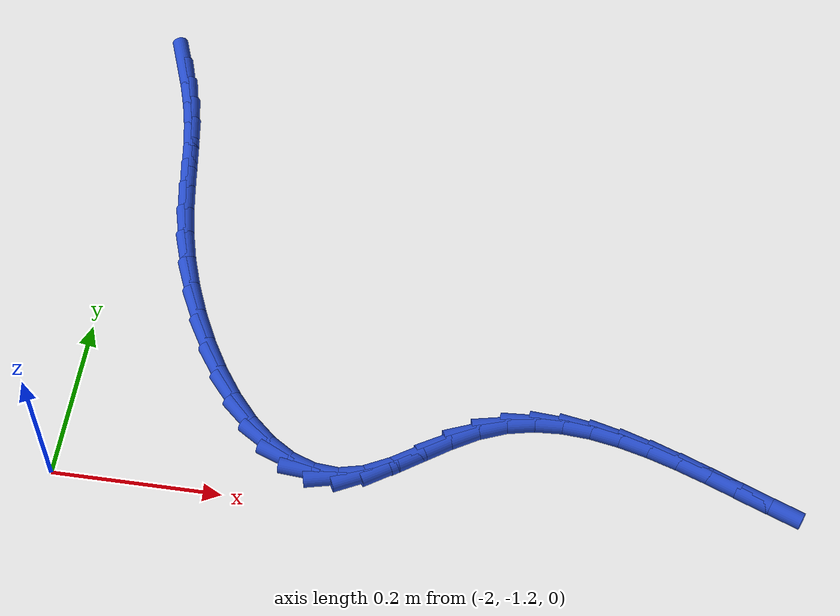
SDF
<sdf version="1.6">
 <world name="default">
  <model name="ground_plane">
   <static>1</static>
   <link name="link">
    <collision name="collision">
     <geometry><plane><normal>0 0 1</normal><size>100 100</size></plane></geometry>
     <surface><friction><ode><mu>100</mu><mu2>50</mu2></ode></friction></surface>
    </collision>
    <visual name="visual">
     <cast_shadows>0</cast_shadows>
     <geometry><plane><normal>0 0 1</normal><size>100 100</size></plane></geometry>
     <material>
      <script><uri>file://media/materials/scripts/gazebo.material</uri><name>Gazebo/WhiteGlow</name></script>
     </material>
    </visual>
   </link>
  </model>
  <model name="line">
   <link name="link_123">
    <pose>-1.9762037504684082 -0.5898322318762785 0.01 0 1.57 -1.2138098411711409</pose>
    <collision name="collision">
     <geometry><cylinder><radius>0.01</radius><length>0.08</length></cylinder></geometry>
    </collision>
    <visual name="visual">
     <material>
      <script><name>Gazebo/Blue</name><uri>file://media/materials/scripts/gazebo.material</uri></script>
     </material>
     <geometry><cylinder><radius>0.01</radius><length>0.08</length></cylinder></geometry>
    </visual>
   </link>
   <link name="link_124">
    <pose>-1.9641521813599274 -0.6221449903830808 0.01 0 1.57 -1.2602646235274075</pose>
    <collision name="collision">
     <geometry><cylinder><radius>0.01</radius><length>0.08</length></cylinder></geometry>
    </collision>
    <visual name="visual">
     <material>
      <script><name>Gazebo/Blue</name><uri>file://media/materials/scripts/gazebo.material</uri></script>
     </material>
     <geometry><cylinder><radius>0.01</radius><length>0.08</length></cylinder></geometry>
    </visual>
   </link>
   <link name="link_125">
    <pose>-1.9537778122791813 -0.6544725716247167 0.01 0 1.57 -1.3210445472237378</pose>
    <collision name="collision">
     <geometry><cylinder><radius>0.01</radius><length>0.08</length></cylinder></geometry>
    </collision>
    <visual name="visual">
     <material>
      <script><name>Gazebo/Blue</name><uri>file://media/materials/scripts/gazebo.material</uri></script>
     </material>
     <geometry><cylinder><radius>0.01</radius><length>0.08</length></cylinder></geometry>
    </visual>
   </link>
   <link name="link_126">
    <pose>-1.9455230476945835 -0.6868343577254359 0.01 0 1.57 -1.3815128865576867</pose>
    <collision name="collision">
     <geometry><cylinder><radius>0.01</radius><length>0.08</length></cylinder></geometry>
    </collision>
    <visual name="visual">
     <material>
      <script><name>Gazebo/Blue</name><uri>file://media/materials/scripts/gazebo.material</uri></script>
     </material>
     <geometry><cylinder><radius>0.01</radius><length>0.08</length></cylinder></geometry>
    </visual>
   </link>
   <link name="link_127">
    <pose>-1.9392945884897312 -0.7193458972791967 0.01 0 1.57 -1.416834655600597</pose>
    <collision name="collision">
     <geometry><cylinder><radius>0.01</radius><length>0.08</length></cylinder></geometry>
    </collision>
    <visual name="visual">
     <material>
      <script><name>Gazebo/Blue</name><uri>file://media/materials/scripts/gazebo.material</uri></script>
     </material>
     <geometry><cylinder><radius>0.01</radius><length>0.08</length></cylinder></geometry>
    </visual>
   </link>
   <link name="link_128">
    <pose>-1.9341852830591333 -0.7522688370636494 0.01 0 1.57 -1.424113236721258</pose>
    <collision name="collision">
     <geometry><cylinder><radius>0.01</radius><length>0.08</length></cylinder></geometry>
    </collision>
    <visual name="visual">
     <material>
      <script><name>Gazebo/Blue</name><uri>file://media/materials/scripts/gazebo.material</uri></script>
     </material>
     <geometry><cylinder><radius>0.01</radius><length>0.08</length></cylinder></geometry>
    </visual>
   </link>
   <link name="link_129">
    <pose>-1.929219863215923 -0.7858770517588592 0.01 0 1.57 -1.4046464800113678</pose>
    <collision name="collision">
     <geometry><cylinder><radius>0.01</radius><length>0.08</length></cylinder></geometry>
    </collision>
    <visual name="visual">
     <material>
      <script><name>Gazebo/Blue</name><uri>file://media/materials/scripts/gazebo.material</uri></script>
     </material>
     <geometry><cylinder><radius>0.01</radius><length>0.08</length></cylinder></geometry>
    </visual>
   </link>
   <link name="link_130">
    <pose>-1.9234230607732372 -0.8204444160448929 0.01 0 1.57 -1.3615212964081387</pose>
    <collision name="collision">
     <geometry><cylinder><radius>0.01</radius><length>0.08</length></cylinder></geometry>
    </collision>
    <visual name="visual">
     <material>
      <script><name>Gazebo/Blue</name><uri>file://media/materials/scripts/gazebo.material</uri></script>
     </material>
     <geometry><cylinder><radius>0.01</radius><length>0.08</length></cylinder></geometry>
    </visual>
   </link>
   <link name="link_131">
    <pose>-1.9158196075442098 -0.8562448046018158 0.01 0 1.57 -1.2994308539623787</pose>
    <collision name="collision">
     <geometry><cylinder><radius>0.01</radius><length>0.08</length></cylinder></geometry>
    </collision>
    <visual name="visual">
     <material>
      <script><name>Gazebo/Blue</name><uri>file://media/materials/scripts/gazebo.material</uri></script>
     </material>
     <geometry><cylinder><radius>0.01</radius><length>0.08</length></cylinder></geometry>
    </visual>
   </link>
   <link name="link_132">
    <pose>-1.9054418645083822 -0.8935441235684229 0.01 0 1.57 -1.2307539183346135</pose>
    <collision name="collision">
     <geometry><cylinder><radius>0.01</radius><length>0.08</length></cylinder></geometry>
    </collision>
    <visual name="visual">
     <material>
      <script><name>Gazebo/Blue</name><uri>file://media/materials/scripts/gazebo.material</uri></script>
     </material>
     <geometry><cylinder><radius>0.01</radius><length>0.08</length></cylinder></geometry>
    </visual>
   </link>
   <link name="link_133">
    <pose>-1.8917970317620658 -0.9321123172838803 0.01 0 1.57 -1.165508054202407</pose>
    <collision name="collision">
     <geometry><cylinder><radius>0.01</radius><length>0.08</length></cylinder></geometry>
    </collision>
    <visual name="visual">
     <material>
      <script><name>Gazebo/Blue</name><uri>file://media/materials/scripts/gazebo.material</uri></script>
     </material>
     <geometry><cylinder><radius>0.01</radius><length>0.08</length></cylinder></geometry>
    </visual>
   </link>
   <link name="link_134">
    <pose>-1.8751383081673996 -0.9709401464073503 0.01 0 1.57 -1.0998286310683427</pose>
    <collision name="collision">
     <geometry><cylinder><radius>0.01</radius><length>0.08</length></cylinder></geometry>
    </collision>
    <visual name="visual">
     <material>
      <script><name>Gazebo/Blue</name><uri>file://media/materials/scripts/gazebo.material</uri></script>
     </material>
     <geometry><cylinder><radius>0.01</radius><length>0.08</length></cylinder></geometry>
    </visual>
   </link>
   <link name="link_135">
    <pose>-1.8557842474709993 -1.0089501094751538 0.01 0 1.57 -1.029113697913406</pose>
    <collision name="collision">
     <geometry><cylinder><radius>0.01</radius><length>0.08</length></cylinder></geometry>
    </collision>
    <visual name="visual">
     <material>
      <script><name>Gazebo/Blue</name><uri>file://media/materials/scripts/gazebo.material</uri></script>
     </material>
     <geometry><cylinder><radius>0.01</radius><length>0.08</length></cylinder></geometry>
    </visual>
   </link>
   <link name="link_136">
    <pose>-1.8340534034194804 -1.045064705023611 0.01 0 1.57 -0.9482248278192487</pose>
    <collision name="collision">
     <geometry><cylinder><radius>0.01</radius><length>0.08</length></cylinder></geometry>
    </collision>
    <visual name="visual">
     <material>
      <script><name>Gazebo/Blue</name><uri>file://media/materials/scripts/gazebo.material</uri></script>
     </material>
     <geometry><cylinder><radius>0.01</radius><length>0.08</length></cylinder></geometry>
    </visual>
   </link>
   <link name="link_137">
    <pose>-1.8102643297594574 -1.0782064315890425 0.01 0 1.57 -0.8505310892687248</pose>
    <collision name="collision">
     <geometry><cylinder><radius>0.01</radius><length>0.08</length></cylinder></geometry>
    </collision>
    <visual name="visual">
     <material>
      <script><name>Gazebo/Blue</name><uri>file://media/materials/scripts/gazebo.material</uri></script>
     </material>
     <geometry><cylinder><radius>0.01</radius><length>0.08</length></cylinder></geometry>
    </visual>
   </link>
   <link name="link_138">
    <pose>-1.7847355802375449 -1.1072977877077685 0.01 0 1.57 -0.7268090272839869</pose>
    <collision name="collision">
     <geometry><cylinder><radius>0.01</radius><length>0.08</length></cylinder></geometry>
    </collision>
    <visual name="visual">
     <material>
      <script><name>Gazebo/Blue</name><uri>file://media/materials/scripts/gazebo.material</uri></script>
     </material>
     <geometry><cylinder><radius>0.01</radius><length>0.08</length></cylinder></geometry>
    </visual>
   </link>
   <link name="link_139">
    <pose>-1.7577857086003585 -1.1312612719161086 0.01 0 1.57 -0.5643547711494223</pose>
    <collision name="collision">
     <geometry><cylinder><radius>0.01</radius><length>0.08</length></cylinder></geometry>
    </collision>
    <visual name="visual">
     <material>
      <script><name>Gazebo/Blue</name><uri>file://media/materials/scripts/gazebo.material</uri></script>
     </material>
     <geometry><cylinder><radius>0.01</radius><length>0.08</length></cylinder></geometry>
    </visual>
   </link>
   <link name="link_140">
    <pose>-1.7297332685945144 -1.1490193827503843 0.01 0 1.57 -0.3484417863598685</pose>
    <collision name="collision">
     <geometry><cylinder><radius>0.01</radius><length>0.08</length></cylinder></geometry>
    </collision>
    <visual name="visual">
     <material>
      <script><name>Gazebo/Blue</name><uri>file://media/materials/scripts/gazebo.material</uri></script>
     </material>
     <geometry><cylinder><radius>0.01</radius><length>0.08</length></cylinder></geometry>
    </visual>
   </link>
   <link name="link_141">
    <pose>-1.7008968139666258 -1.159494618746915 0.01 0 1.57 -0.07204985923438395</pose>
    <collision name="collision">
     <geometry><cylinder><radius>0.01</radius><length>0.08</length></cylinder></geometry>
    </collision>
    <visual name="visual">
     <material>
      <script><name>Gazebo/Blue</name><uri>file://media/materials/scripts/gazebo.material</uri></script>
     </material>
     <geometry><cylinder><radius>0.01</radius><length>0.08</length></cylinder></geometry>
    </visual>
   </link>
   <link name="link_142">
    <pose>-1.6715948984633093 -1.1616094784420221 0.01 0 1.57 0.2397584541995837</pose>
    <collision name="collision">
     <geometry><cylinder><radius>0.01</radius><length>0.08</length></cylinder></geometry>
    </collision>
    <visual name="visual">
     <material>
      <script><name>Gazebo/Blue</name><uri>file://media/materials/scripts/gazebo.material</uri></script>
     </material>
     <geometry><cylinder><radius>0.01</radius><length>0.08</length></cylinder></geometry>
    </visual>
   </link>
   <link name="link_143">
    <pose>-1.6421330831831475 -1.1544072222560435 0.01 0 1.57 0.4742080335637637</pose>
    <collision name="collision">
     <geometry><cylinder><radius>0.01</radius><length>0.08</length></cylinder></geometry>
    </collision>
    <visual name="visual">
     <material>
      <script><name>Gazebo/Blue</name><uri>file://media/materials/scripts/gazebo.material</uri></script>
     </material>
     <geometry><cylinder><radius>0.01</radius><length>0.08</length></cylinder></geometry>
    </visual>
   </link>
   <link name="link_144">
    <pose>-1.6125692741400812 -1.1392329735195905 0.01 0 1.57 0.5844985711791194</pose>
    <collision name="collision">
     <geometry><cylinder><radius>0.01</radius><length>0.08</length></cylinder></geometry>
    </collision>
    <visual name="visual">
     <material>
      <script><name>Gazebo/Blue</name><uri>file://media/materials/scripts/gazebo.material</uri></script>
     </material>
     <geometry><cylinder><radius>0.01</radius><length>0.08</length></cylinder></geometry>
    </visual>
   </link>
   <link name="link_145">
    <pose>-1.582739202488204 -1.1194968891570736 0.01 0 1.57 0.6023986452066264</pose>
    <collision name="collision">
     <geometry><cylinder><radius>0.01</radius><length>0.08</length></cylinder></geometry>
    </collision>
    <visual name="visual">
     <material>
      <script><name>Gazebo/Blue</name><uri>file://media/materials/scripts/gazebo.material</uri></script>
     </material>
     <geometry><cylinder><radius>0.01</radius><length>0.08</length></cylinder></geometry>
    </visual>
   </link>
   <link name="link_146">
    <pose>-1.5524707216172289 -1.098682347014974 0.01 0 1.57 0.5376097168711512</pose>
    <collision name="collision">
     <geometry><cylinder><radius>0.01</radius><length>0.08</length></cylinder></geometry>
    </collision>
    <visual name="visual">
     <material>
      <script><name>Gazebo/Blue</name><uri>file://media/materials/scripts/gazebo.material</uri></script>
     </material>
     <geometry><cylinder><radius>0.01</radius><length>0.08</length></cylinder></geometry>
    </visual>
   </link>
   <link name="link_147">
    <pose>-1.5215916849168667 -1.0802727249397717 0.01 0 1.57 0.38920004936217617</pose>
    <collision name="collision">
     <geometry><cylinder><radius>0.01</radius><length>0.08</length></cylinder></geometry>
    </collision>
    <visual name="visual">
     <material>
      <script><name>Gazebo/Blue</name><uri>file://media/materials/scripts/gazebo.material</uri></script>
     </material>
     <geometry><cylinder><radius>0.01</radius><length>0.08</length></cylinder></geometry>
    </visual>
   </link>
   <link name="link_148">
    <pose>-1.4899574492949752 -1.0672988888376127 0.01 0 1.57 0.21940755180677338</pose>
    <collision name="collision">
     <geometry><cylinder><radius>0.01</radius><length>0.08</length></cylinder></geometry>
    </collision>
    <visual name="visual">
     <material>
      <script><name>Gazebo/Blue</name><uri>file://media/materials/scripts/gazebo.material</uri></script>
     </material>
     <geometry><cylinder><radius>0.01</radius><length>0.08</length></cylinder></geometry>
    </visual>
   </link>
   <link name="link_149">
    <pose>-1.4575881505350226 -1.0600806184064289 0.01 0 1.57 0.06495550082286387</pose>
    <collision name="collision">
     <geometry><cylinder><radius>0.01</radius><length>0.08</length></cylinder></geometry>
    </collision>
    <visual name="visual">
     <material>
      <script><name>Gazebo/Blue</name><uri>file://media/materials/scripts/gazebo.material</uri></script>
     </material>
     <geometry><cylinder><radius>0.01</radius><length>0.08</length></cylinder></geometry>
    </visual>
   </link>
   <link name="link_150">
    <pose>-1.4245650159370453 -1.0579325622713907 0.01 0 1.57 -0.06643335490289756</pose>
    <collision name="collision">
     <geometry><cylinder><radius>0.01</radius><length>0.08</length></cylinder></geometry>
    </collision>
    <visual name="visual">
     <material>
      <script><name>Gazebo/Blue</name><uri>file://media/materials/scripts/gazebo.material</uri></script>
     </material>
     <geometry><cylinder><radius>0.01</radius><length>0.08</length></cylinder></geometry>
    </visual>
   </link>
   <link name="link_151">
    <pose>-1.390969372864252 -1.0601677227308073 0.01 0 1.57 -0.1722829604824421</pose>
    <collision name="collision">
     <geometry><cylinder><radius>0.01</radius><length>0.08</length></cylinder></geometry>
    </collision>
    <visual name="visual">
     <material>
      <script><name>Gazebo/Blue</name><uri>file://media/materials/scripts/gazebo.material</uri></script>
     </material>
     <geometry><cylinder><radius>0.01</radius><length>0.08</length></cylinder></geometry>
    </visual>
   </link>
   <link name="link_152">
    <pose>-1.3568825486798537 -1.0660991020829877 0.01 0 1.57 -0.2535930787277096</pose>
    <collision name="collision">
     <geometry><cylinder><radius>0.01</radius><length>0.08</length></cylinder></geometry>
    </collision>
    <visual name="visual">
     <material>
      <script><name>Gazebo/Blue</name><uri>file://media/materials/scripts/gazebo.material</uri></script>
     </material>
     <geometry><cylinder><radius>0.01</radius><length>0.08</length></cylinder></geometry>
    </visual>
   </link>
   <link name="link_153">
    <pose>-1.3223858707470588 -1.0750397026262422 0.01 0 1.57 -0.3127932492861784</pose>
    <collision name="collision">
     <geometry><cylinder><radius>0.01</radius><length>0.08</length></cylinder></geometry>
    </collision>
    <visual name="visual">
     <material>
      <script><name>Gazebo/Blue</name><uri>file://media/materials/scripts/gazebo.material</uri></script>
     </material>
     <geometry><cylinder><radius>0.01</radius><length>0.08</length></cylinder></geometry>
    </visual>
   </link>
   <link name="link_154">
    <pose>-1.287560666429078 -1.0863025266588804 0.01 0 1.57 -0.35240376297282283</pose>
    <collision name="collision">
     <geometry><cylinder><radius>0.01</radius><length>0.08</length></cylinder></geometry>
    </collision>
    <visual name="visual">
     <material>
      <script><name>Gazebo/Blue</name><uri>file://media/materials/scripts/gazebo.material</uri></script>
     </material>
     <geometry><cylinder><radius>0.01</radius><length>0.08</length></cylinder></geometry>
    </visual>
   </link>
   <link name="link_155">
    <pose>-1.2524882630891196 -1.0992005764792114 0.01 0 1.57 -0.3743992504713841</pose>
    <collision name="collision">
     <geometry><cylinder><radius>0.01</radius><length>0.08</length></cylinder></geometry>
    </collision>
    <visual name="visual">
     <material>
      <script><name>Gazebo/Blue</name><uri>file://media/materials/scripts/gazebo.material</uri></script>
     </material>
     <geometry><cylinder><radius>0.01</radius><length>0.08</length></cylinder></geometry>
    </visual>
   </link>
   <link name="link_156">
    <pose>-1.2172499880903944 -1.1130468543855452 0.01 0 1.57 -0.3799786341382886</pose>
    <collision name="collision">
     <geometry><cylinder><radius>0.01</radius><length>0.08</length></cylinder></geometry>
    </collision>
    <visual name="visual">
     <material>
      <script><name>Gazebo/Blue</name><uri>file://media/materials/scripts/gazebo.material</uri></script>
     </material>
     <geometry><cylinder><radius>0.01</radius><length>0.08</length></cylinder></geometry>
    </visual>
   </link>
   <link name="link_157">
    <pose>-1.1819271687961104 -1.1271543626761917 0.01 0 1.57 -0.36950957886627134</pose>
    <collision name="collision">
     <geometry><cylinder><radius>0.01</radius><length>0.08</length></cylinder></geometry>
    </collision>
    <visual name="visual">
     <material>
      <script><name>Gazebo/Blue</name><uri>file://media/materials/scripts/gazebo.material</uri></script>
     </material>
     <geometry><cylinder><radius>0.01</radius><length>0.08</length></cylinder></geometry>
    </visual>
   </link>
  </model>
 </world>
</sdf>
